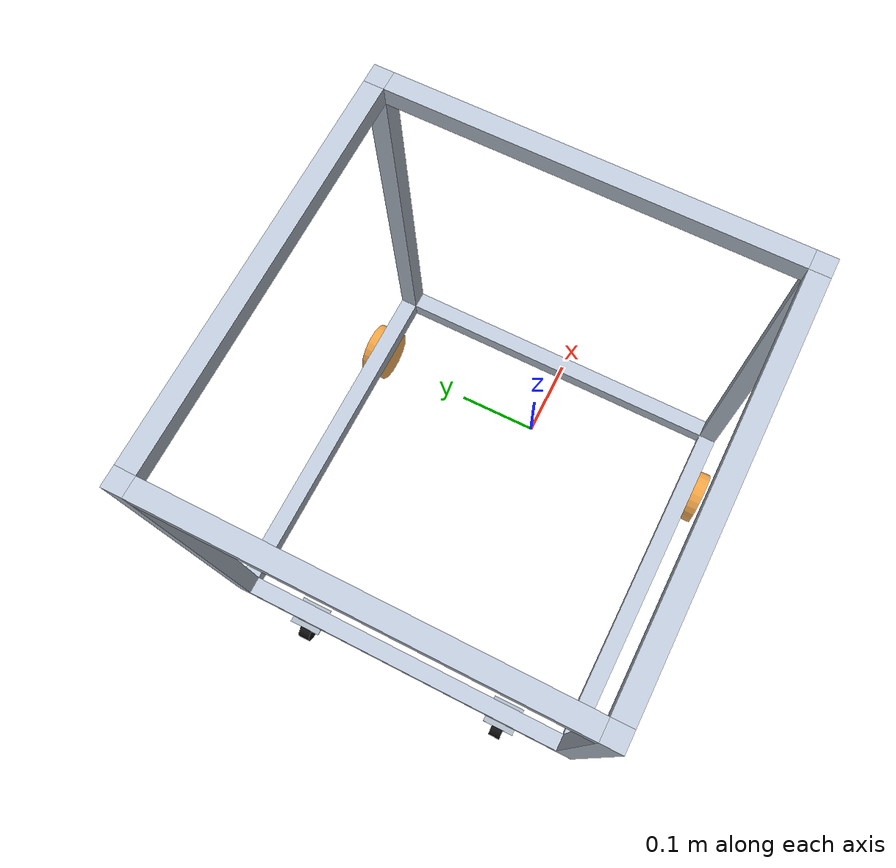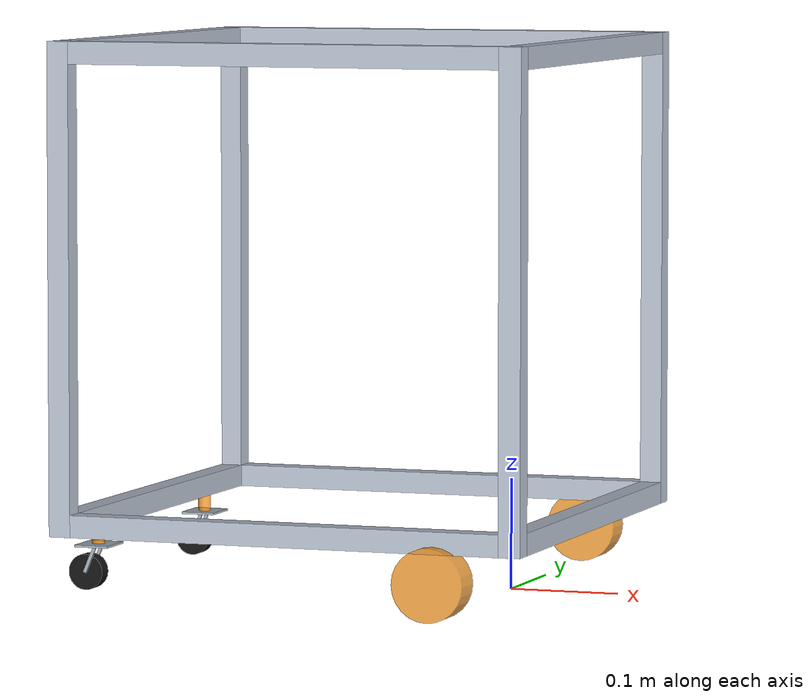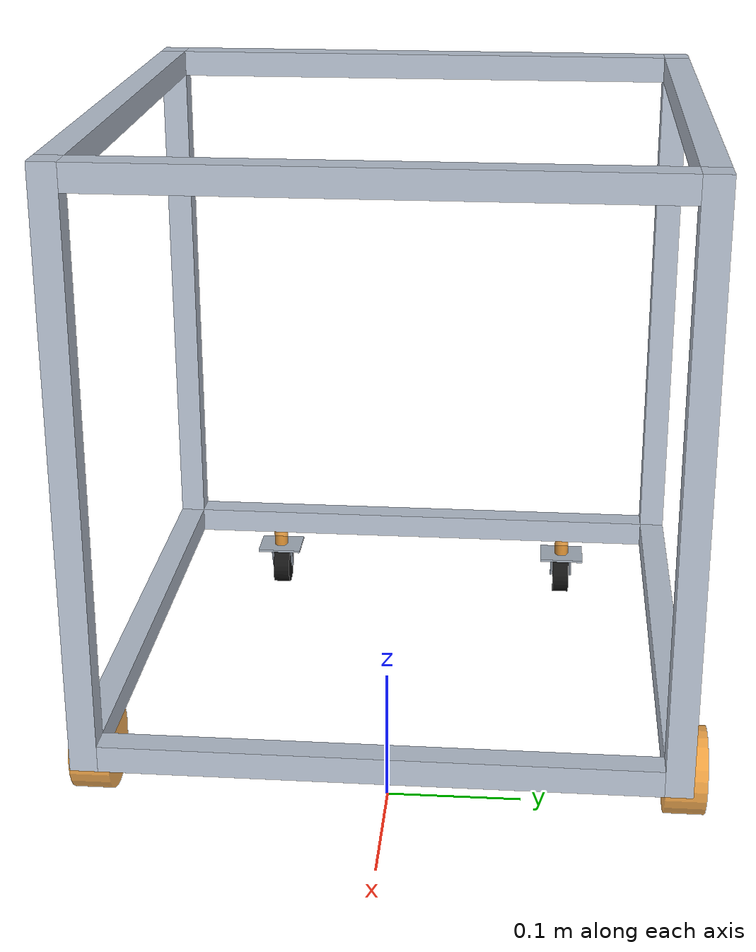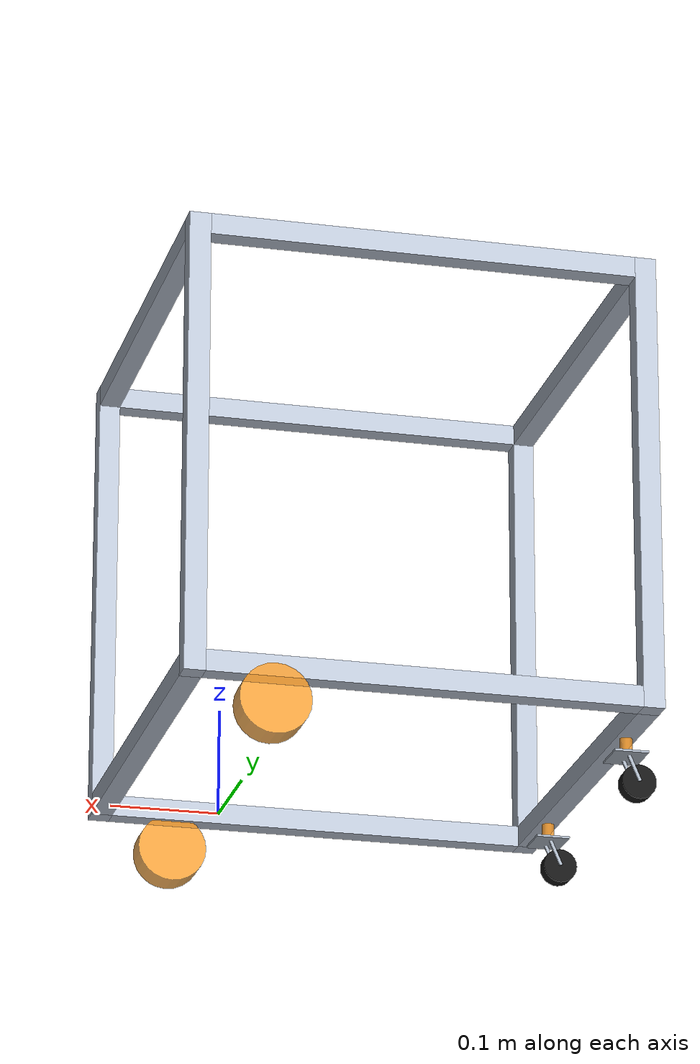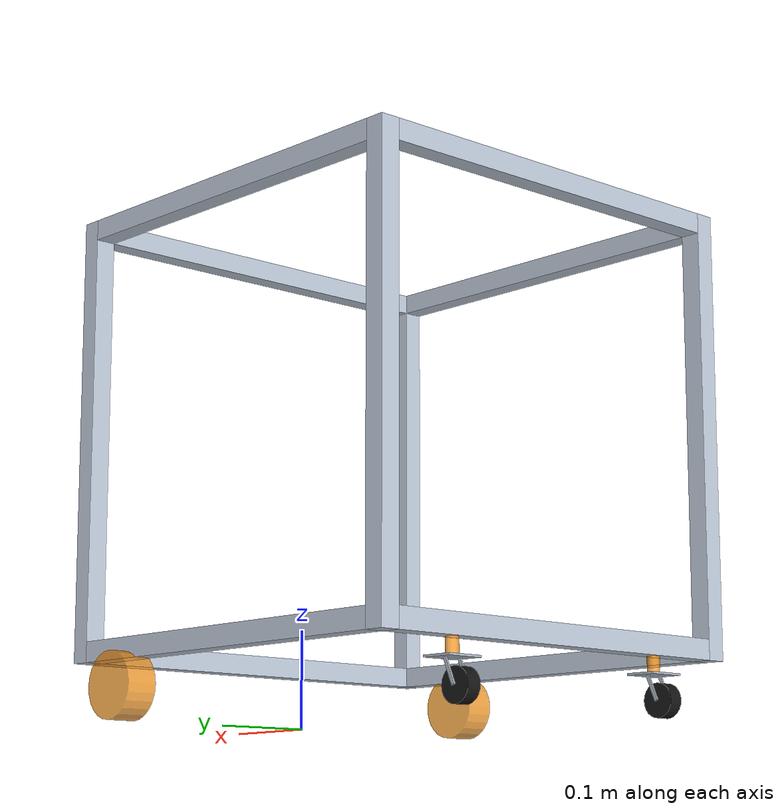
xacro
<?xml version="1.0"?>
<robot xmlns:xacro="http://www.ros.org/wiki/xacro" name="orinbot">
  <xacro:arg name="profile_size" default="0.020"/>
  <xacro:arg name="body_length" default="0.44"/>
  <xacro:arg name="body_width" default="0.44"/>
  <xacro:arg name="body_height" default="0.44"/>
  <xacro:arg name="ground_clearance" default="0.058"/>
  <xacro:arg name="drive_axle_x" default="0.14"/>
  <xacro:arg name="wheel_radius" default="0.0325"/>
  <xacro:arg name="wheel_separation" default="0.44"/>
  <xacro:arg name="wheel_width" default="0"/>
  <xacro:arg name="caster_x" default="-0.21"/>
  <xacro:arg name="caster_separation" default="0.26"/>
  <xacro:arg name="caster_radius" default="0.0162"/>
  <xacro:arg name="caster_width" default="0.0142"/>
  <xacro:arg name="caster_height" default="0.042"/>
  <xacro:arg name="caster_plate_length" default="0.032"/>
  <xacro:arg name="caster_plate_width" default="0.038"/>
  <xacro:arg name="caster_trail" default="0.01"/>
  <xacro:arg name="caster_trail_measured" default="false"/>

  <xacro:property name="length" value="${float('$(arg body_length)')}"/>
  <xacro:property name="width" value="${float('$(arg body_width)')}"/>
  <xacro:property name="height" value="${float('$(arg body_height)')}"/>
  <xacro:property name="profile" value="${float('$(arg profile_size)')}"/>
  <xacro:property name="body_z" value="${float('$(arg ground_clearance)') + height/2}"/>
  <xacro:property name="axle_x" value="${float('$(arg drive_axle_x)')}"/>
  <xacro:property name="radius" value="${float('$(arg wheel_radius)')}"/>
  <xacro:property name="track" value="${float('$(arg wheel_separation)')}"/>
  <xacro:property name="tire_width" value="${float('$(arg wheel_width)')}"/>
  <xacro:property name="visual_tire_width" value="${tire_width if tire_width > 0 else 0.03}"/>
  <xacro:property name="caster_r" value="${float('$(arg caster_radius)')}"/>
  <xacro:property name="caster_h" value="${float('$(arg caster_height)')}"/>
  <xacro:property name="spacer_h" value="${float('$(arg ground_clearance)')-caster_h}"/>
  <xacro:property name="trail" value="${float('$(arg caster_trail)')}"/>
  <xacro:property name="fork_h" value="${caster_h-0.002-caster_r}"/>

  <material name="body_grey"><color rgba="0.72 0.76 0.82 1"/></material>
  <material name="tire_black"><color rgba="0.08 0.08 0.08 1"/></material>
  <material name="caster_metal"><color rgba="0.65 0.69 0.74 1"/></material>
  <material name="provisional"><color rgba="0.95 0.58 0.12 0.8"/></material>
  <!-- Differential-drive kinematics are referenced to the drive axle midpoint. -->
  <link name="base_footprint"/>
  <joint name="base_joint" type="fixed">
    <parent link="base_footprint"/>
    <child link="base_link"/>
    <origin xyz="${-axle_x} 0 ${body_z}" rpy="0 0 0"/>
  </joint>
  <!-- Solid rectangular envelopes of 2020 extrusions; T-slots/fasteners omitted. -->
  <xacro:macro name="profile_bar" params="x y z sx sy sz">
    <visual>
      <origin xyz="${x} ${y} ${z}"/>
      <geometry><box size="${sx} ${sy} ${sz}"/></geometry>
      <material name="body_grey"/>
    </visual>
    <collision>
      <origin xyz="${x} ${y} ${z}"/>
      <geometry><box size="${sx} ${sy} ${sz}"/></geometry>
    </collision>
  </xacro:macro>
  <xacro:macro name="frame_corner" params="xsign ysign">
    <xacro:profile_bar x="${xsign*(length-profile)/2}" y="${ysign*(width-profile)/2}" z="0"
                       sx="${profile}" sy="${profile}" sz="${height}"/>
  </xacro:macro>
  <xacro:macro name="frame_level" params="zsign">
    <xacro:profile_bar x="0" y="${(width-profile)/2}" z="${zsign*(height-profile)/2}"
                       sx="${length-2*profile}" sy="${profile}" sz="${profile}"/>
    <xacro:profile_bar x="0" y="${-(width-profile)/2}" z="${zsign*(height-profile)/2}"
                       sx="${length-2*profile}" sy="${profile}" sz="${profile}"/>
    <xacro:profile_bar x="${(length-profile)/2}" y="0" z="${zsign*(height-profile)/2}"
                       sx="${profile}" sy="${width-2*profile}" sz="${profile}"/>
    <xacro:profile_bar x="${-(length-profile)/2}" y="0" z="${zsign*(height-profile)/2}"
                       sx="${profile}" sy="${width-2*profile}" sz="${profile}"/>
  </xacro:macro>
  <link name="base_link">
    <xacro:frame_corner xsign="1" ysign="1"/>
    <xacro:frame_corner xsign="1" ysign="-1"/>
    <xacro:frame_corner xsign="-1" ysign="1"/>
    <xacro:frame_corner xsign="-1" ysign="-1"/>
    <xacro:frame_level zsign="1"/>
    <xacro:frame_level zsign="-1"/>
  </link>

  <xacro:macro name="drive_wheel" params="side sign">
    <!-- Mounting reference on the side extrusion, distinct from the wheel shaft. -->
    <link name="${side}_motor_mount"/>
    <joint name="${side}_motor_mount_joint" type="fixed">
      <parent link="base_link"/>
      <child link="${side}_motor_mount"/>
      <origin xyz="${axle_x} ${sign*(width-profile)/2} ${-(height-profile)/2}"/>
    </joint>
    <link name="${side}_wheel_link">
      <visual>
        <origin rpy="${pi/2} 0 0"/>
        <geometry><cylinder radius="${radius}" length="${visual_tire_width}"/></geometry>
        <xacro:if value="${tire_width > 0}"><material name="tire_black"/></xacro:if>
        <xacro:unless value="${tire_width > 0}"><material name="provisional"/></xacro:unless>
      </visual>
      <xacro:if value="${tire_width > 0}">
        <collision>
          <origin rpy="${pi/2} 0 0"/>
          <geometry><cylinder radius="${radius}" length="${tire_width}"/></geometry>
        </collision>
      </xacro:if>
    </link>
    <joint name="${side}_wheel_joint" type="continuous">
      <parent link="base_link"/>
      <child link="${side}_wheel_link"/>
      <origin xyz="${axle_x} ${sign*track/2} ${radius-body_z}" rpy="0 0 0"/>
      <axis xyz="0 1 0"/>
    </joint>
  </xacro:macro>
  <xacro:drive_wheel side="left" sign="1"/>
  <xacro:drive_wheel side="right" sign="-1"/>

  <!-- Ground projections of the two rear swivel axes, NOT caster wheel centers. -->
  <xacro:macro name="caster_reference" params="side sign">
    <link name="rear_${side}_caster_ground"/>
    <joint name="rear_${side}_caster_reference_joint" type="fixed">
      <parent link="base_link"/>
      <child link="rear_${side}_caster_ground"/>
      <origin xyz="$(arg caster_x) ${sign*float('$(arg caster_separation)')/2} ${-body_z}" rpy="0 0 0"/>
    </joint>
    <!-- Fixed nominal caster orientation for visualization; passive swivel is not sensed.
         Plate thickness (2mm) and spacer diameter (12mm) are schematic only. -->
    <link name="rear_${side}_caster_mount">
      <visual>
        <origin xyz="0 0 -0.001"/>
        <geometry><box size="$(arg caster_plate_length) $(arg caster_plate_width) 0.002"/></geometry>
        <material name="caster_metal"/>
      </visual>
      <xacro:if value="${spacer_h > 0}">
        <visual>
          <origin xyz="0 0 ${spacer_h/2}"/>
          <geometry><cylinder radius="0.006" length="${spacer_h}"/></geometry>
          <material name="provisional"/>
        </visual>
      </xacro:if>
      <!-- Schematic fork arms joining the plate to the wheel axle. -->
      <visual>
        <origin xyz="${-trail/2} ${float('$(arg caster_width)')/2+0.0015} ${(-0.002+caster_r-caster_h)/2}"
                rpy="0 ${atan2(trail, fork_h)} 0"/>
        <geometry><box size="0.003 0.002 ${sqrt(trail*trail+fork_h*fork_h)}"/></geometry>
        <material name="caster_metal"/>
      </visual>
      <visual>
        <origin xyz="${-trail/2} ${-float('$(arg caster_width)')/2-0.0015} ${(-0.002+caster_r-caster_h)/2}"
                rpy="0 ${atan2(trail, fork_h)} 0"/>
        <geometry><box size="0.003 0.002 ${sqrt(trail*trail+fork_h*fork_h)}"/></geometry>
        <material name="caster_metal"/>
      </visual>
    </link>
    <joint name="rear_${side}_caster_mount_joint" type="fixed">
      <parent link="rear_${side}_caster_ground"/>
      <child link="rear_${side}_caster_mount"/>
      <origin xyz="0 0 ${caster_h}"/>
    </joint>
    <link name="rear_${side}_caster_wheel_link">
      <visual>
        <origin rpy="${pi/2} 0 0"/>
        <geometry><cylinder radius="${caster_r}" length="$(arg caster_width)"/></geometry>
        <material name="tire_black"/>
      </visual>
      <xacro:if value="$(arg caster_trail_measured)">
        <collision>
          <origin rpy="${pi/2} 0 0"/>
          <geometry><cylinder radius="${caster_r}" length="$(arg caster_width)"/></geometry>
        </collision>
      </xacro:if>
    </link>
    <joint name="rear_${side}_caster_wheel_joint" type="fixed">
      <parent link="rear_${side}_caster_mount"/>
      <child link="rear_${side}_caster_wheel_link"/>
      <origin xyz="${-float('$(arg caster_trail)')} 0 ${caster_r-caster_h}"/>
    </joint>
  </xacro:macro>
  <xacro:caster_reference side="left" sign="1"/>
  <xacro:caster_reference side="right" sign="-1"/>
</robot>
